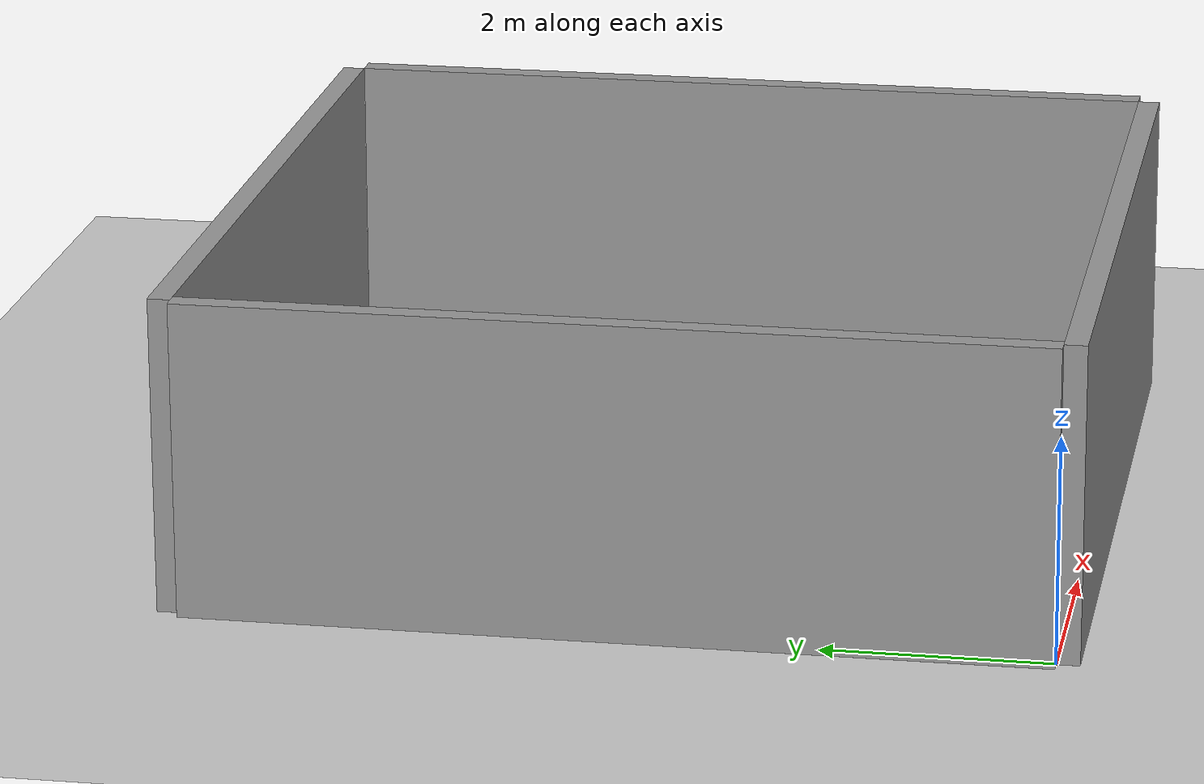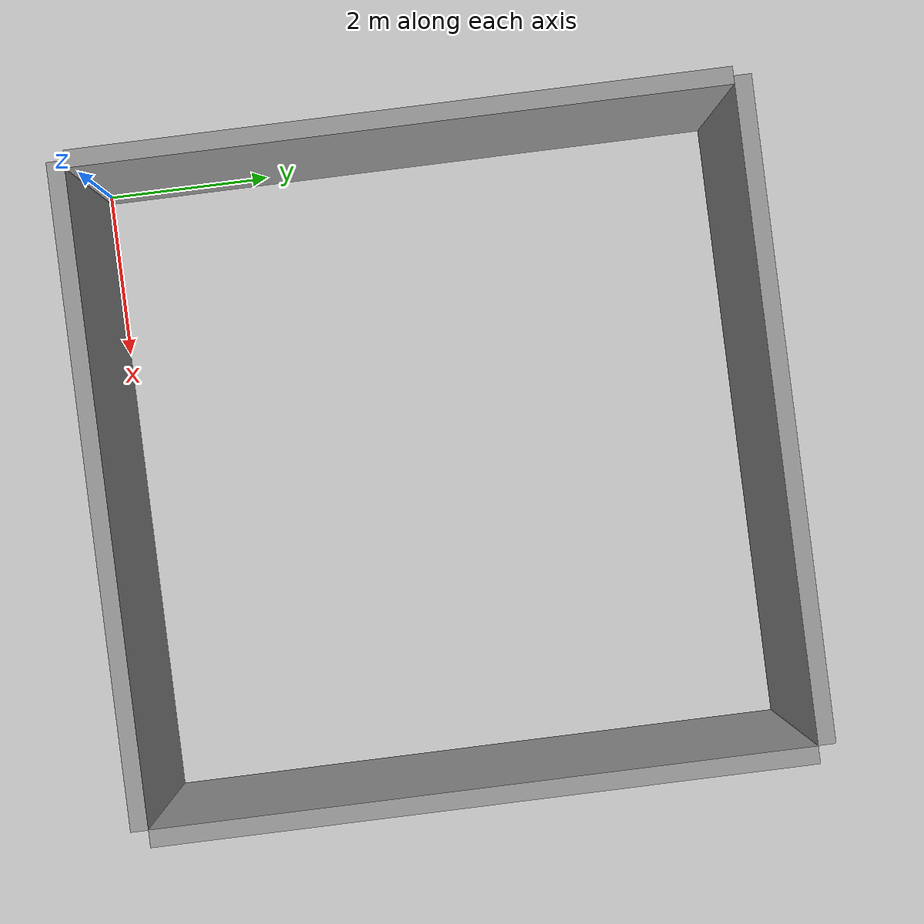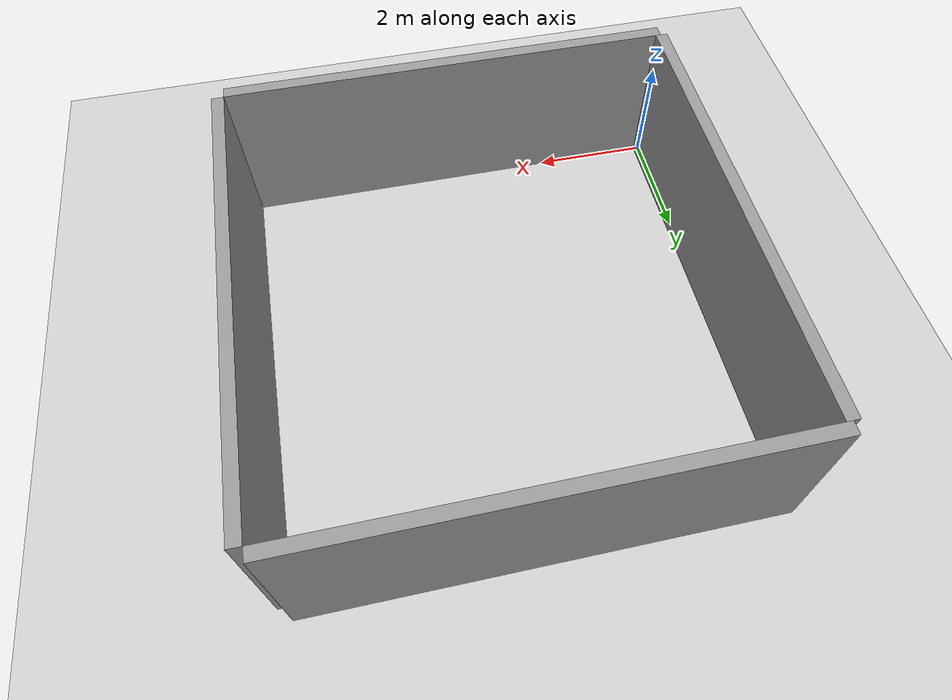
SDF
<sdf version="1.5">
 <world name="default">
  <include><uri>model://sun</uri></include>
  <include><uri>model://ground_plane</uri></include>
  <model name="grey_wall_0">
   <static>1</static>
   <link name="link">
    <pose>0 0 1.4 0 -0 0</pose>
    <collision name="collision"><geometry><box><size>7.5 0.2 2.8</size></box></geometry></collision>
    <visual name="visual">
     <cast_shadows>0</cast_shadows>
     <geometry><box><size>7.5 0.2 2.8</size></box></geometry>
     <material>
      <script>
       <uri>model://grey_wall/materials/scripts</uri>
       <uri>model://grey_wall/materials/textures</uri>
       <name>vrc/grey_wall</name>
      </script>
     </material>
    </visual>
   </link>
   <pose>3.75 -0.1 0 0 -0 0</pose>
  </model>
  <model name="grey_wall_1">
   <static>1</static>
   <link name="link">
    <pose>0 0 1.4 0 -0 0</pose>
    <collision name="collision"><geometry><box><size>7.5 0.2 2.8</size></box></geometry></collision>
    <visual name="visual">
     <cast_shadows>0</cast_shadows>
     <geometry><box><size>7.5 0.2 2.8</size></box></geometry>
     <material>
      <script>
       <uri>model://grey_wall/materials/scripts</uri>
       <uri>model://grey_wall/materials/textures</uri>
       <name>vrc/grey_wall</name>
      </script>
     </material>
    </visual>
    <velocity_decay><linear>0</linear><angular>0</angular></velocity_decay>
   </link>
   <pose>7.6 3.75 0 0 -0 1.57</pose>
  </model>
  <model name="grey_wall_2">
   <static>1</static>
   <link name="link">
    <pose>0 0 1.4 0 -0 0</pose>
    <collision name="collision"><geometry><box><size>7.5 0.2 2.8</size></box></geometry></collision>
    <visual name="visual">
     <cast_shadows>0</cast_shadows>
     <geometry><box><size>7.5 0.2 2.8</size></box></geometry>
     <material>
      <script>
       <uri>model://grey_wall/materials/scripts</uri>
       <uri>model://grey_wall/materials/textures</uri>
       <name>vrc/grey_wall</name>
      </script>
     </material>
    </visual>
    <velocity_decay><linear>0</linear><angular>0</angular></velocity_decay>
   </link>
   <pose>3.75 7.6 0 0 -0 0</pose>
  </model>
  <model name="grey_wall_3">
   <static>1</static>
   <link name="link">
    <pose>0 0 1.4 0 -0 0</pose>
    <collision name="collision"><geometry><box><size>7.5 0.2 2.8</size></box></geometry></collision>
    <visual name="visual">
     <cast_shadows>0</cast_shadows>
     <geometry><box><size>7.5 0.2 2.8</size></box></geometry>
     <material>
      <script>
       <uri>model://grey_wall/materials/scripts</uri>
       <uri>model://grey_wall/materials/textures</uri>
       <name>vrc/grey_wall</name>
      </script>
     </material>
    </visual>
    <velocity_decay><linear>0</linear><angular>0</angular></velocity_decay>
   </link>
   <pose>-.01 3.75 0 0 -0 1.57</pose>
  </model>
 </world>
</sdf>
